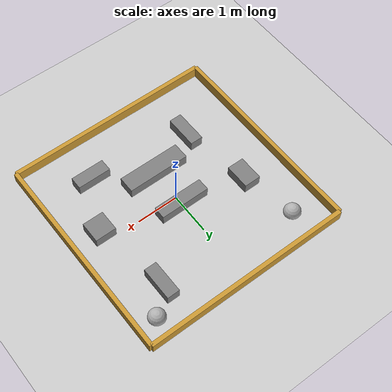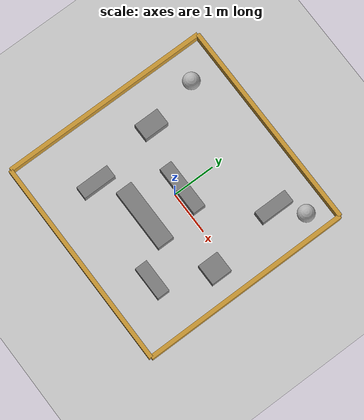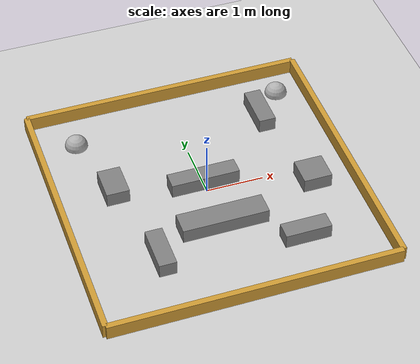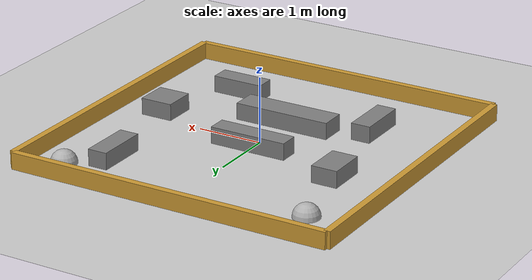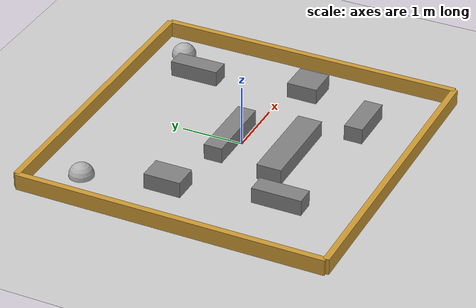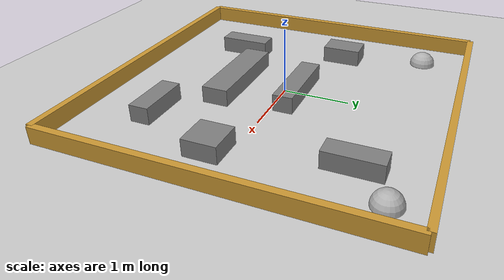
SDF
<?xml version="1.0"?>
<sdf version="1.8">
  <world name="stage4">
    <!-- Physics -->
    <plugin
      filename="gz-sim-physics-system"
      name="gz::sim::systems::Physics">
    </plugin>
    <plugin
      filename="gz-sim-user-commands-system"
      name="gz::sim::systems::UserCommands">
    </plugin>
    <plugin
      filename="gz-sim-scene-broadcaster-system"
      name="gz::sim::systems::SceneBroadcaster">
    </plugin>
    <plugin
      filename="gz-sim-sensors-system"
      name="gz::sim::systems::Sensors">
      <render_engine>ogre2</render_engine>
    </plugin>
    <plugin
      filename="gz-sim-imu-system"
      name="gz::sim::systems::Imu">
    </plugin>

    <physics type="ode">
      <real_time_update_rate>1000.0</real_time_update_rate>
      <max_step_size>0.001</max_step_size>
      <real_time_factor>1</real_time_factor>
      <ode>
        <solver>
          <type>quick</type>
          <iters>150</iters>
          <precon_iters>0</precon_iters>
          <sor>1.400000</sor>
          <use_dynamic_moi_rescaling>1</use_dynamic_moi_rescaling>
        </solver>
        <constraints>
          <cfm>0.00001</cfm>
          <erp>0.2</erp>
          <contact_max_correcting_vel>2000.000000</contact_max_correcting_vel>
          <contact_surface_layer>0.01000</contact_surface_layer>
        </constraints>
      </ode>
    </physics>

    <!-- Ground plane (local) -->
    <model name="ground_plane">
      <static>true</static>
      <link name="link">
        <collision name="collision">
          <geometry>
            <plane>
              <normal>0 0 1</normal>
              <size>10 10</size>
            </plane>
          </geometry>
        </collision>
        <visual name="visual">
          <geometry>
            <plane>
              <normal>0 0 1</normal>
              <size>10 10</size>
            </plane>
          </geometry>
          <material>
            <ambient>0.8 0.8 0.8 1</ambient>
            <diffuse>0.8 0.8 0.8 1</diffuse>
          </material>
        </visual>
      </link>
    </model>

    <!-- Lighting -->
    <light type="directional" name="sun">
      <cast_shadows>false</cast_shadows>
      <pose>0 0 10 0 0 0</pose>
      <diffuse>0.8 0.8 0.8 1</diffuse>
      <specular>0.2 0.2 0.2 1</specular>
      <attenuation>
        <range>1000</range>
        <constant>0.9</constant>
        <linear>0.01</linear>
        <quadratic>0.001</quadratic>
      </attenuation>
      <direction>-0.5 0.1 -0.9</direction>
    </light>

    <!-- Stage 4: 5x5 pálya falakkal és mozgó akadályokkal -->

    <!-- Külső falak (5m x 5m) -->
    <!-- Északi fal -->
    <model name="wall_north">
      <static>true</static>
      <pose>0 2.5 0 0 0 0</pose>
      <link name="link">
        <collision name="collision">
          <geometry>
            <box>
              <size>5 0.1 0.5</size>
            </box>
          </geometry>
        </collision>
        <visual name="visual">
          <geometry>
            <box>
              <size>5 0.1 0.5</size>
            </box>
          </geometry>
          <material>
            <ambient>0.8 0.6 0.2 1</ambient>
            <diffuse>0.8 0.6 0.2 1</diffuse>
          </material>
        </visual>
      </link>
    </model>

    <!-- Déli fal -->
    <model name="wall_south">
      <static>true</static>
      <pose>0 -2.5 0 0 0 0</pose>
      <link name="link">
        <collision name="collision">
          <geometry>
            <box>
              <size>5 0.1 0.5</size>
            </box>
          </geometry>
        </collision>
        <visual name="visual">
          <geometry>
            <box>
              <size>5 0.1 0.5</size>
            </box>
          </geometry>
          <material>
            <ambient>0.8 0.6 0.2 1</ambient>
            <diffuse>0.8 0.6 0.2 1</diffuse>
          </material>
        </visual>
      </link>
    </model>

    <!-- Nyugati fal -->
    <model name="wall_west">
      <static>true</static>
      <pose>-2.5 0 0 0 0 0</pose>
      <link name="link">
        <collision name="collision">
          <geometry>
            <box>
              <size>0.1 5 0.5</size>
            </box>
          </geometry>
        </collision>
        <visual name="visual">
          <geometry>
            <box>
              <size>0.1 5 0.5</size>
            </box>
          </geometry>
          <material>
            <ambient>0.8 0.6 0.2 1</ambient>
            <diffuse>0.8 0.6 0.2 1</diffuse>
          </material>
        </visual>
      </link>
    </model>

    <!-- Keleti fal -->
    <model name="wall_east">
      <static>true</static>
      <pose>2.5 0 0 0 0 0</pose>
      <link name="link">
        <collision name="collision">
          <geometry>
            <box>
              <size>0.1 5 0.5</size>
            </box>
          </geometry>
        </collision>
        <visual name="visual">
          <geometry>
            <box>
              <size>0.1 5 0.5</size>
            </box>
          </geometry>
          <material>
            <ambient>0.8 0.6 0.2 1</ambient>
            <diffuse>0.8 0.6 0.2 1</diffuse>
          </material>
        </visual>
      </link>
    </model>

    <!-- Belső akadályok (rögzített) -->
    <!-- Balra alul -->
    <model name="obstacle_1">
      <static>true</static>
      <pose>-1.2 -1.2 0 0 0 0</pose>
      <link name="link">
        <collision name="collision">
          <geometry>
            <box>
              <size>0.3 0.8 0.5</size>
            </box>
          </geometry>
        </collision>
        <visual name="visual">
          <geometry>
            <box>
              <size>0.3 0.8 0.5</size>
            </box>
          </geometry>
          <material>
            <ambient>0.5 0.5 0.5 1</ambient>
            <diffuse>0.5 0.5 0.5 1</diffuse>
          </material>
        </visual>
      </link>
    </model>

    <!-- Jobbra alul -->
    <model name="obstacle_2">
      <static>true</static>
      <pose>1.2 -1.5 0 0 0 0</pose>
      <link name="link">
        <collision name="collision">
          <geometry>
            <box>
              <size>0.8 0.3 0.5</size>
            </box>
          </geometry>
        </collision>
        <visual name="visual">
          <geometry>
            <box>
              <size>0.8 0.3 0.5</size>
            </box>
          </geometry>
          <material>
            <ambient>0.5 0.5 0.5 1</ambient>
            <diffuse>0.5 0.5 0.5 1</diffuse>
          </material>
        </visual>
      </link>
    </model>

    <!-- Középen vízszintes -->
    <model name="obstacle_3">
      <static>true</static>
      <pose>0 0.2 0 0 0 0</pose>
      <link name="link">
        <collision name="collision">
          <geometry>
            <box>
              <size>1.2 0.3 0.5</size>
            </box>
          </geometry>
        </collision>
        <visual name="visual">
          <geometry>
            <box>
              <size>1.2 0.3 0.5</size>
            </box>
          </geometry>
          <material>
            <ambient>0.5 0.5 0.5 1</ambient>
            <diffuse>0.5 0.5 0.5 1</diffuse>
          </material>
        </visual>
      </link>
    </model>

    <!-- Jobbra fent -->
    <model name="obstacle_4">
      <static>true</static>
      <pose>1.5 1.5 0 0 0 0</pose>
      <link name="link">
        <collision name="collision">
          <geometry>
            <box>
              <size>0.3 0.8 0.5</size>
            </box>
          </geometry>
        </collision>
        <visual name="visual">
          <geometry>
            <box>
              <size>0.3 0.8 0.5</size>
            </box>
          </geometry>
          <material>
            <ambient>0.5 0.5 0.5 1</ambient>
            <diffuse>0.5 0.5 0.5 1</diffuse>
          </material>
        </visual>
      </link>
    </model>

    <!-- Balra fent oszlop -->
    <model name="obstacle_5">
      <static>true</static>
      <pose>-1.8 1.8 0 0 0 0</pose>
      <link name="link">
        <collision name="collision">
          <geometry>
            <sphere>
              <radius>0.2</radius>
            </sphere>
          </geometry>
        </collision>
        <visual name="visual">
          <geometry>
            <sphere>
              <radius>0.2</radius>
            </sphere>
          </geometry>
          <material>
            <ambient>0.7 0.7 0.7 1</ambient>
            <diffuse>0.7 0.7 0.7 1</diffuse>
          </material>
        </visual>
      </link>
    </model>

    <!-- Jobb fent oszlop -->
    <model name="obstacle_6">
      <static>true</static>
      <pose>2.0 2.0 0 0 0 0</pose>
      <link name="link">
        <collision name="collision">
          <geometry>
            <sphere>
              <radius>0.2</radius>
            </sphere>
          </geometry>
        </collision>
        <visual name="visual">
          <geometry>
            <sphere>
              <radius>0.2</radius>
            </sphere>
          </geometry>
          <material>
            <ambient>0.7 0.7 0.7 1</ambient>
            <diffuse>0.7 0.7 0.7 1</diffuse>
          </material>
        </visual>
      </link>
    </model>

    <!-- Középen nagy akadály -->
    <model name="obstacle_7">
      <static>true</static>
      <pose>0 -0.8 0 0 0 0</pose>
      <link name="link">
        <collision name="collision">
          <geometry>
            <box>
              <size>1.5 0.4 0.5</size>
            </box>
          </geometry>
        </collision>
        <visual name="visual">
          <geometry>
            <box>
              <size>1.5 0.4 0.5</size>
            </box>
          </geometry>
          <material>
            <ambient>0.5 0.5 0.5 1</ambient>
            <diffuse>0.5 0.5 0.5 1</diffuse>
          </material>
        </visual>
      </link>
    </model>

    <!-- Balra középen -->
    <model name="obstacle_8">
      <static>true</static>
      <pose>-1.5 0.5 0 0 0 0</pose>
      <link name="link">
        <collision name="collision">
          <geometry>
            <box>
              <size>0.4 0.6 0.5</size>
            </box>
          </geometry>
        </collision>
        <visual name="visual">
          <geometry>
            <box>
              <size>0.4 0.6 0.5</size>
            </box>
          </geometry>
          <material>
            <ambient>0.5 0.5 0.5 1</ambient>
            <diffuse>0.5 0.5 0.5 1</diffuse>
          </material>
        </visual>
      </link>
    </model>

    <!-- Jobbra középen -->
    <model name="obstacle_9">
      <static>true</static>
      <pose>1.8 -0.3 0 0 0 0</pose>
      <link name="link">
        <collision name="collision">
          <geometry>
            <box>
              <size>0.5 0.5 0.5</size>
            </box>
          </geometry>
        </collision>
        <visual name="visual">
          <geometry>
            <box>
              <size>0.5 0.5 0.5</size>
            </box>
          </geometry>
          <material>
            <ambient>0.5 0.5 0.5 1</ambient>
            <diffuse>0.5 0.5 0.5 1</diffuse>
          </material>
        </visual>
      </link>
    </model>

  </world>
</sdf>
